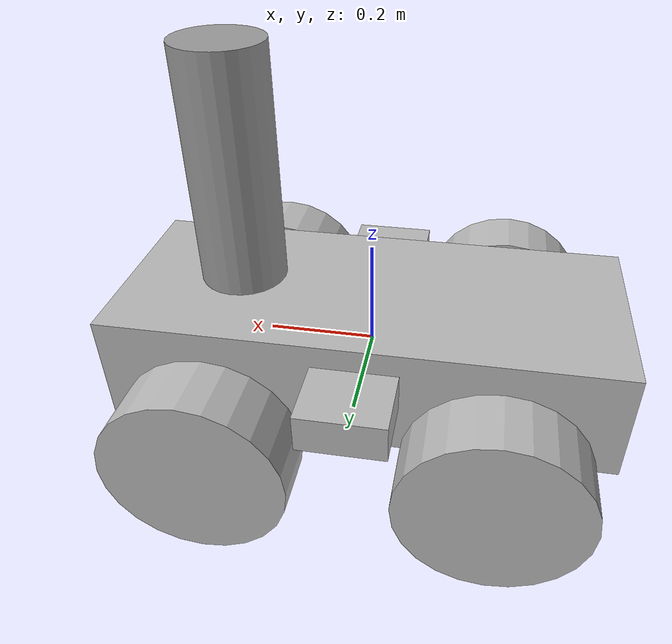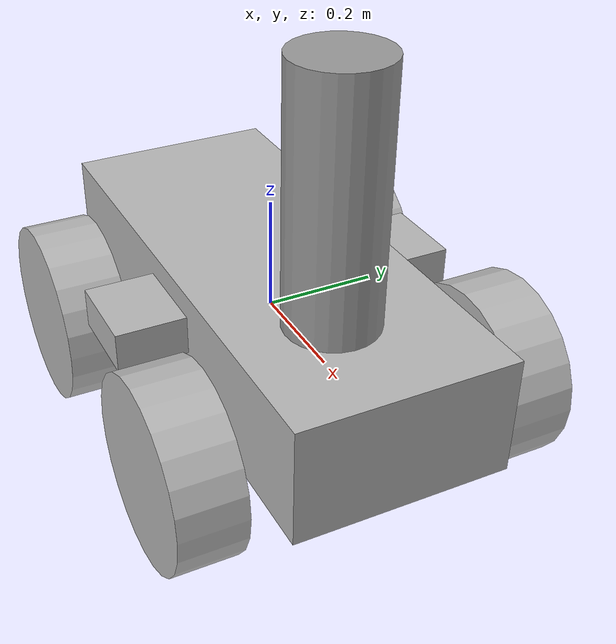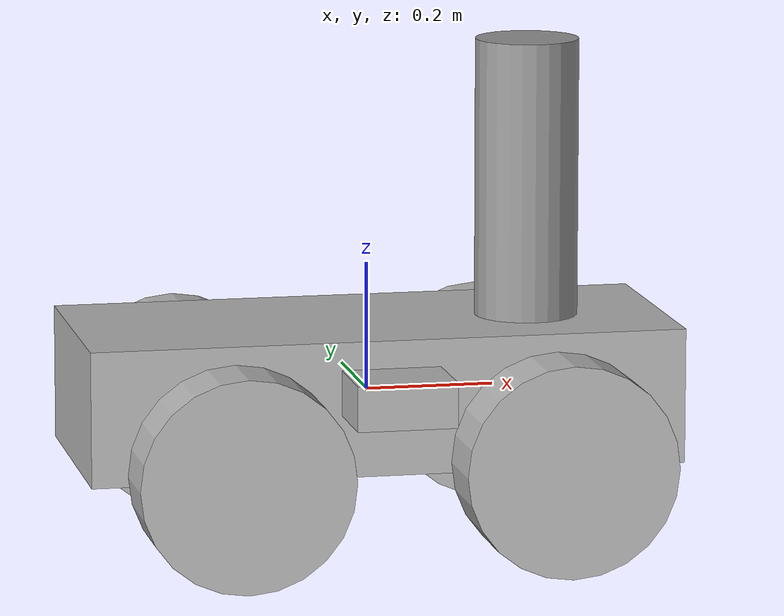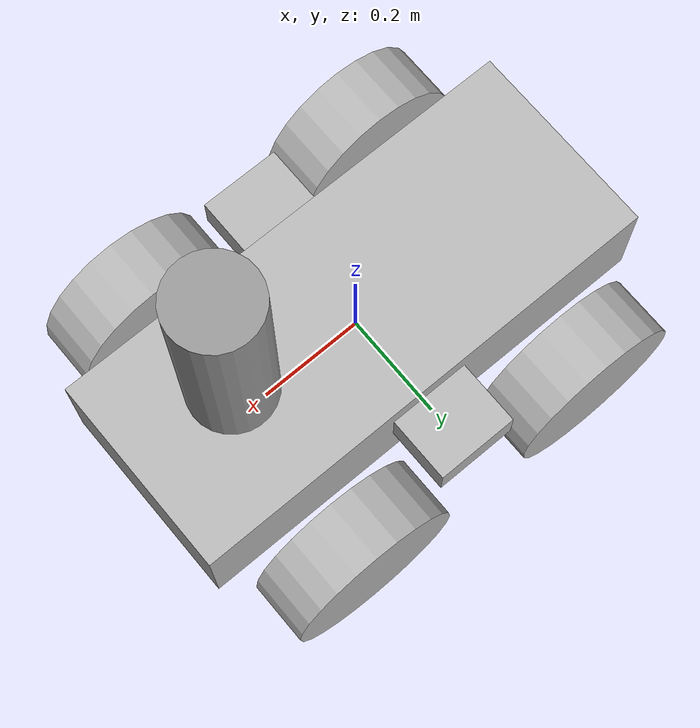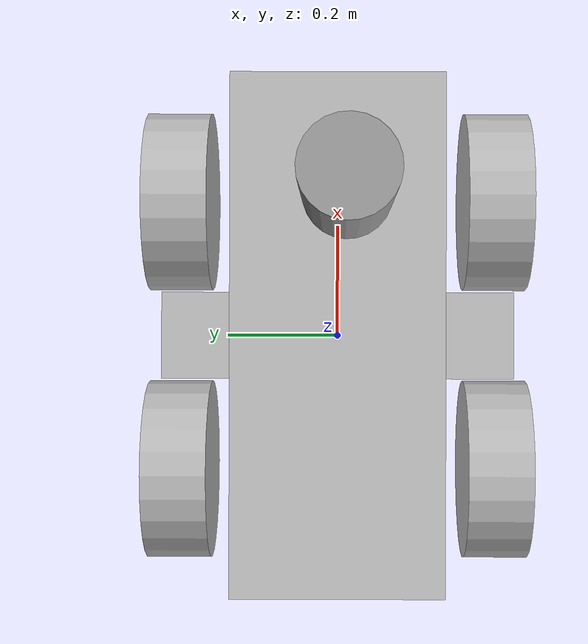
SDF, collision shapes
<?xml version='1.0'?>
<sdf version='1.7'>
  <model name='scout/scout_w_cyl'>
    <link name='base_link'>
      <inertial>
        <pose>0 0 0 0 -0 0</pose>
        <mass>50</mass>
        <inertia>
          <ixx>2.28864</ixx>
          <ixy>0</ixy>
          <ixz>0</ixz>
          <iyy>5.10398</iyy>
          <iyz>0</iyz>
          <izz>3.43147</izz>
        </inertia>
      </inertial>
      <self_collide>0</self_collide>
      <enable_wind>0</enable_wind>
      <kinematic>0</kinematic>
      <pose>0 0 0 0 -0 0</pose>
      <visual name='base_link_visual'>
        <pose>0 0 0 0 -0 0</pose>
        <geometry>
          <mesh>
            <scale>1 1 1</scale>
            <uri>/home/nate/scout_ws/src/ugv_sim/scout/scout_description/meshes/base_link.dae</uri>
          </mesh>
        </geometry>
        <material>
          <shader type='pixel'/>
          <emissive>0 0 0 1</emissive>
        </material>
        <transparency>0</transparency>
        <cast_shadows>1</cast_shadows>
      </visual>
      <collision name='base_link_collision_1'>
        <laser_retro>0</laser_retro>
        <max_contacts>10</max_contacts>
        <pose>0 0 0.035 0 -0 0</pose>
        <geometry>
          <box>
            <size>0.154167 0.627 0.07</size>
          </box>
        </geometry>
        <surface>
          <friction>
            <ode>
              <mu>1</mu>
              <mu2>1</mu2>
              <fdir1>0 0 0</fdir1>
              <slip1>0</slip1>
              <slip2>0</slip2>
            </ode>
            <torsional>
              <coefficient>1</coefficient>
              <patch_radius>0</patch_radius>
              <surface_radius>0</surface_radius>
              <use_patch_radius>1</use_patch_radius>
              <ode>
                <slip>0</slip>
              </ode>
            </torsional>
          </friction>
          <bounce>
            <restitution_coefficient>0</restitution_coefficient>
            <threshold>1e+06</threshold>
          </bounce>
          <contact>
            <collide_without_contact>0</collide_without_contact>
            <collide_without_contact_bitmask>1</collide_without_contact_bitmask>
            <collide_bitmask>1</collide_bitmask>
            <ode>
              <soft_cfm>0</soft_cfm>
              <soft_erp>0.2</soft_erp>
              <kp>1e+13</kp>
              <kd>1</kd>
              <max_vel>0.01</max_vel>
              <min_depth>0</min_depth>
            </ode>
            <bullet>
              <split_impulse>1</split_impulse>
              <split_impulse_penetration_threshold>-0.01</split_impulse_penetration_threshold>
              <soft_cfm>0</soft_cfm>
              <soft_erp>0.2</soft_erp>
              <kp>1e+13</kp>
              <kd>1</kd>
            </bullet>
          </contact>
        </surface>
      </collision>
      <collision name='base_link_collision'>
        <laser_retro>0</laser_retro>
        <max_contacts>10</max_contacts>
        <pose>0 0 0.008 0 -0 0</pose>
        <geometry>
          <box>
            <size>0.925 0.38 0.21</size>
          </box>
        </geometry>
        <surface>
          <friction>
            <ode>
              <mu>1</mu>
              <mu2>1</mu2>
              <fdir1>0 0 0</fdir1>
              <slip1>0</slip1>
              <slip2>0</slip2>
            </ode>
            <torsional>
              <coefficient>1</coefficient>
              <patch_radius>0</patch_radius>
              <surface_radius>0</surface_radius>
              <use_patch_radius>1</use_patch_radius>
              <ode>
                <slip>0</slip>
              </ode>
            </torsional>
          </friction>
          <bounce>
            <restitution_coefficient>0</restitution_coefficient>
            <threshold>1e+06</threshold>
          </bounce>
          <contact>
            <collide_without_contact>0</collide_without_contact>
            <collide_without_contact_bitmask>1</collide_without_contact_bitmask>
            <collide_bitmask>1</collide_bitmask>
            <ode>
              <soft_cfm>0</soft_cfm>
              <soft_erp>0.2</soft_erp>
              <kp>1e+13</kp>
              <kd>1</kd>
              <max_vel>0.01</max_vel>
              <min_depth>0</min_depth>
            </ode>
            <bullet>
              <split_impulse>1</split_impulse>
              <split_impulse_penetration_threshold>-0.01</split_impulse_penetration_threshold>
              <soft_cfm>0</soft_cfm>
              <soft_erp>0.2</soft_erp>
              <kp>1e+13</kp>
              <kd>1</kd>
            </bullet>
          </contact>
        </surface>
      </collision>
    </link>
    <link name='front_left_wheel_link'>
      <pose>0.249 0.29153 -0.0702 0 -0 0</pose>
      <inertial>
        <pose>0 0 0 0 -0 0</pose>
        <mass>8</mass>
        <inertia>
          <ixx>0.1171</ixx>
          <ixy>0</ixy>
          <ixz>0</ixz>
          <iyy>0.1361</iyy>
          <iyz>0</iyz>
          <izz>0.1171</izz>
        </inertia>
      </inertial>
      <self_collide>0</self_collide>
      <enable_wind>0</enable_wind>
      <kinematic>0</kinematic>
      <visual name='front_left_wheel_link_visual'>
        <pose>0 0 0 0 -0 0</pose>
        <geometry>
          <mesh>
            <scale>1 1 1</scale>
            <uri>/home/nate/scout_ws/src/ugv_sim/scout/scout_description/meshes/wheel_type1.dae</uri>
          </mesh>
        </geometry>
        <material>
          <shader type='pixel'/>
        </material>
        <transparency>0</transparency>
        <cast_shadows>1</cast_shadows>
      </visual>
      <collision name='front_left_wheel_link_collision'>
        <laser_retro>0</laser_retro>
        <max_contacts>10</max_contacts>
        <pose>0 0 0 1.57079 -0 0</pose>
        <geometry>
          <cylinder>
            <radius>0.16459</radius>
            <length>0.11653</length>
          </cylinder>
        </geometry>
        <surface>
          <friction>
            <ode>
              <mu>0.9</mu>
              <mu2>0.7</mu2>
              <fdir1>1 0 0</fdir1>
              <slip1>0</slip1>
              <slip2>0</slip2>
            </ode>
            <torsional>
              <coefficient>1</coefficient>
              <patch_radius>0</patch_radius>
              <surface_radius>0</surface_radius>
              <use_patch_radius>1</use_patch_radius>
              <ode>
                <slip>0</slip>
              </ode>
            </torsional>
          </friction>
          <bounce>
            <restitution_coefficient>0</restitution_coefficient>
            <threshold>1e+06</threshold>
          </bounce>
          <contact>
            <collide_without_contact>0</collide_without_contact>
            <collide_without_contact_bitmask>1</collide_without_contact_bitmask>
            <collide_bitmask>1</collide_bitmask>
            <ode>
              <soft_cfm>0</soft_cfm>
              <soft_erp>0.2</soft_erp>
              <kp>1e+09</kp>
              <kd>0</kd>
              <max_vel>0.01</max_vel>
              <min_depth>0.001</min_depth>
            </ode>
            <bullet>
              <split_impulse>1</split_impulse>
              <split_impulse_penetration_threshold>-0.01</split_impulse_penetration_threshold>
              <soft_cfm>0</soft_cfm>
              <soft_erp>0.2</soft_erp>
              <kp>1e+09</kp>
              <kd>0</kd>
            </bullet>
          </contact>
        </surface>
      </collision>
    </link>
    <link name='front_right_wheel_link'>
      <pose>0.249 -0.29153 -0.0702 3.14 -0 0</pose>
      <inertial>
        <pose>0 0 0 0 -0 0</pose>
        <mass>8</mass>
        <inertia>
          <ixx>0.1171</ixx>
          <ixy>0</ixy>
          <ixz>0</ixz>
          <iyy>0.1361</iyy>
          <iyz>0</iyz>
          <izz>0.1171</izz>
        </inertia>
      </inertial>
      <self_collide>0</self_collide>
      <enable_wind>0</enable_wind>
      <kinematic>0</kinematic>
      <visual name='front_right_wheel_link_visual'>
        <pose>0 0 0 0 -0 0</pose>
        <geometry>
          <mesh>
            <scale>1 1 1</scale>
            <uri>/home/nate/scout_ws/src/ugv_sim/scout/scout_description/meshes/wheel_type1.dae</uri>
          </mesh>
        </geometry>
        <material>
          <shader type='pixel'/>
        </material>
        <transparency>0</transparency>
        <cast_shadows>1</cast_shadows>
      </visual>
      <collision name='front_right_wheel_link_collision'>
        <laser_retro>0</laser_retro>
        <max_contacts>10</max_contacts>
        <pose>0 0 0 1.57079 -0 0</pose>
        <geometry>
          <cylinder>
            <radius>0.16459</radius>
            <length>0.11653</length>
          </cylinder>
        </geometry>
        <surface>
          <friction>
            <ode>
              <mu>0.9</mu>
              <mu2>0.7</mu2>
              <fdir1>1 0 0</fdir1>
              <slip1>0</slip1>
              <slip2>0</slip2>
            </ode>
            <torsional>
              <coefficient>1</coefficient>
              <patch_radius>0</patch_radius>
              <surface_radius>0</surface_radius>
              <use_patch_radius>1</use_patch_radius>
              <ode>
                <slip>0</slip>
              </ode>
            </torsional>
          </friction>
          <bounce>
            <restitution_coefficient>0</restitution_coefficient>
            <threshold>1e+06</threshold>
          </bounce>
          <contact>
            <collide_without_contact>0</collide_without_contact>
            <collide_without_contact_bitmask>1</collide_without_contact_bitmask>
            <collide_bitmask>1</collide_bitmask>
            <ode>
              <soft_cfm>0</soft_cfm>
              <soft_erp>0.2</soft_erp>
              <kp>1e+09</kp>
              <kd>0</kd>
              <max_vel>0.01</max_vel>
              <min_depth>0.001</min_depth>
            </ode>
            <bullet>
              <split_impulse>1</split_impulse>
              <split_impulse_penetration_threshold>-0.01</split_impulse_penetration_threshold>
              <soft_cfm>0</soft_cfm>
              <soft_erp>0.2</soft_erp>
              <kp>1e+09</kp>
              <kd>0</kd>
            </bullet>
          </contact>
        </surface>
      </collision>
    </link>
    <link name='link_0'>
      <inertial>
        <mass>0.0120746</mass>
        <inertia>
          <ixx>0.000238806</ixx>
          <ixy>0</ixy>
          <ixz>0</ixz>
          <iyy>0.000238806</iyy>
          <iyz>0</iyz>
          <izz>3.90394e-05</izz>
        </inertia>
        <pose>0 0 0 0 -0 0</pose>
      </inertial>
      <pose>0.249654 -0.016848 0.31321 -0.000305 6.4e-05 -0.045899</pose>
      <visual name='visual'>
        <pose>0 0 0 0 -0 0</pose>
        <geometry>
          <cylinder>
            <radius>0.0804137</radius>
            <length>0.466831</length>
          </cylinder>
        </geometry>
        <material>
          <lighting>1</lighting>
          <script>
            <uri>file://media/materials/scripts/gazebo.material</uri>
            <name>Gazebo/Grey</name>
          </script>
          <shader type='pixel'/>
          <emissive>0 0 0 1</emissive>
        </material>
        <transparency>0</transparency>
        <cast_shadows>1</cast_shadows>
      </visual>
      <collision name='collision'>
        <laser_retro>0</laser_retro>
        <max_contacts>10</max_contacts>
        <pose>0 0 0 0 -0 0</pose>
        <geometry>
          <cylinder>
            <radius>0.080414</radius>
            <length>0.466831</length>
          </cylinder>
        </geometry>
        <surface>
          <friction>
            <ode>
              <mu>1</mu>
              <mu2>1</mu2>
              <fdir1>0 0 0</fdir1>
              <slip1>0</slip1>
              <slip2>0</slip2>
            </ode>
            <torsional>
              <coefficient>1</coefficient>
              <patch_radius>0</patch_radius>
              <surface_radius>0</surface_radius>
              <use_patch_radius>1</use_patch_radius>
              <ode>
                <slip>0</slip>
              </ode>
            </torsional>
          </friction>
          <bounce>
            <restitution_coefficient>0</restitution_coefficient>
            <threshold>1e+06</threshold>
          </bounce>
          <contact>
            <collide_without_contact>0</collide_without_contact>
            <collide_without_contact_bitmask>1</collide_without_contact_bitmask>
            <collide_bitmask>1</collide_bitmask>
            <ode>
              <soft_cfm>0</soft_cfm>
              <soft_erp>0.2</soft_erp>
              <kp>1e+13</kp>
              <kd>1</kd>
              <max_vel>0.01</max_vel>
              <min_depth>0</min_depth>
            </ode>
            <bullet>
              <split_impulse>1</split_impulse>
              <split_impulse_penetration_threshold>-0.01</split_impulse_penetration_threshold>
              <soft_cfm>0</soft_cfm>
              <soft_erp>0.2</soft_erp>
              <kp>1e+13</kp>
              <kd>1</kd>
            </bullet>
          </contact>
        </surface>
      </collision>
    </link>
    <link name='rear_left_wheel_link'>
      <pose>-0.249 0.29153 -0.0702 0 -0 0</pose>
      <inertial>
        <pose>0 0 0 0 -0 0</pose>
        <mass>8</mass>
        <inertia>
          <ixx>0.1171</ixx>
          <ixy>0</ixy>
          <ixz>0</ixz>
          <iyy>0.1361</iyy>
          <iyz>0</iyz>
          <izz>0.1171</izz>
        </inertia>
      </inertial>
      <self_collide>0</self_collide>
      <enable_wind>0</enable_wind>
      <kinematic>0</kinematic>
      <visual name='rear_left_wheel_link_visual'>
        <pose>0 0 0 0 -0 0</pose>
        <geometry>
          <mesh>
            <scale>1 1 1</scale>
            <uri>/home/nate/scout_ws/src/ugv_sim/scout/scout_description/meshes/wheel_type1.dae</uri>
          </mesh>
        </geometry>
        <material>
          <shader type='pixel'/>
        </material>
        <transparency>0</transparency>
        <cast_shadows>1</cast_shadows>
      </visual>
      <collision name='rear_left_wheel_link_collision'>
        <laser_retro>0</laser_retro>
        <max_contacts>10</max_contacts>
        <pose>0 0 0 1.57079 -0 0</pose>
        <geometry>
          <cylinder>
            <radius>0.16459</radius>
            <length>0.11653</length>
          </cylinder>
        </geometry>
        <surface>
          <friction>
            <ode>
              <mu>0.9</mu>
              <mu2>0.7</mu2>
              <fdir1>1 0 0</fdir1>
              <slip1>0</slip1>
              <slip2>0</slip2>
            </ode>
            <torsional>
              <coefficient>1</coefficient>
              <patch_radius>0</patch_radius>
              <surface_radius>0</surface_radius>
              <use_patch_radius>1</use_patch_radius>
              <ode>
                <slip>0</slip>
              </ode>
            </torsional>
          </friction>
          <bounce>
            <restitution_coefficient>0</restitution_coefficient>
            <threshold>1e+06</threshold>
          </bounce>
          <contact>
            <collide_without_contact>0</collide_without_contact>
            <collide_without_contact_bitmask>1</collide_without_contact_bitmask>
            <collide_bitmask>1</collide_bitmask>
            <ode>
              <soft_cfm>0</soft_cfm>
              <soft_erp>0.2</soft_erp>
              <kp>1e+09</kp>
              <kd>0</kd>
              <max_vel>0.01</max_vel>
              <min_depth>0.001</min_depth>
            </ode>
            <bullet>
              <split_impulse>1</split_impulse>
              <split_impulse_penetration_threshold>-0.01</split_impulse_penetration_threshold>
              <soft_cfm>0</soft_cfm>
              <soft_erp>0.2</soft_erp>
              <kp>1e+09</kp>
              <kd>0</kd>
            </bullet>
          </contact>
        </surface>
      </collision>
    </link>
    <link name='rear_right_wheel_link'>
      <pose>-0.249 -0.29153 -0.0702 3.14 -0 0</pose>
      <inertial>
        <pose>0 0 0 0 -0 0</pose>
        <mass>8</mass>
        <inertia>
          <ixx>0.1171</ixx>
          <ixy>0</ixy>
          <ixz>0</ixz>
          <iyy>0.1361</iyy>
          <iyz>0</iyz>
          <izz>0.1171</izz>
        </inertia>
      </inertial>
      <self_collide>0</self_collide>
      <enable_wind>0</enable_wind>
      <kinematic>0</kinematic>
      <visual name='rear_right_wheel_link_visual'>
        <pose>0 0 0 0 -0 0</pose>
        <geometry>
          <mesh>
            <scale>1 1 1</scale>
            <uri>/home/nate/scout_ws/src/ugv_sim/scout/scout_description/meshes/wheel_type1.dae</uri>
          </mesh>
        </geometry>
        <material>
          <shader type='pixel'/>
          <emissive>0 0 0 1</emissive>
        </material>
        <transparency>0</transparency>
        <cast_shadows>1</cast_shadows>
      </visual>
      <collision name='rear_right_wheel_link_collision'>
        <laser_retro>0</laser_retro>
        <max_contacts>10</max_contacts>
        <pose>0 0 0 1.57079 -0 0</pose>
        <geometry>
          <cylinder>
            <radius>0.16459</radius>
            <length>0.11653</length>
          </cylinder>
        </geometry>
        <surface>
          <friction>
            <ode>
              <mu>0.9</mu>
              <mu2>0.7</mu2>
              <fdir1>1 0 0</fdir1>
              <slip1>0</slip1>
              <slip2>0</slip2>
            </ode>
            <torsional>
              <coefficient>1</coefficient>
              <patch_radius>0</patch_radius>
              <surface_radius>0</surface_radius>
              <use_patch_radius>1</use_patch_radius>
              <ode>
                <slip>0</slip>
              </ode>
            </torsional>
          </friction>
          <bounce>
            <restitution_coefficient>0</restitution_coefficient>
            <threshold>1e+06</threshold>
          </bounce>
          <contact>
            <collide_without_contact>0</collide_without_contact>
            <collide_without_contact_bitmask>1</collide_without_contact_bitmask>
            <collide_bitmask>1</collide_bitmask>
            <ode>
              <soft_cfm>0</soft_cfm>
              <soft_erp>0.2</soft_erp>
              <kp>1e+09</kp>
              <kd>0</kd>
              <max_vel>0.01</max_vel>
              <min_depth>0.001</min_depth>
            </ode>
            <bullet>
              <split_impulse>1</split_impulse>
              <split_impulse_penetration_threshold>-0.01</split_impulse_penetration_threshold>
              <soft_cfm>0</soft_cfm>
              <soft_erp>0.2</soft_erp>
              <kp>1e+09</kp>
              <kd>0</kd>
            </bullet>
          </contact>
        </surface>
      </collision>
    </link>
    <joint name='base_link_JOINT_0' type='fixed'>
      <parent>base_link</parent>
      <child>link_0</child>
      <pose>0 0 0 0 -0 0</pose>
      <physics>
        <ode>
          <limit>
            <cfm>0</cfm>
            <erp>0.2</erp>
          </limit>
          <suspension>
            <cfm>0</cfm>
            <erp>0.2</erp>
          </suspension>
        </ode>
      </physics>
    </joint>
    <joint name='front_left_wheel' type='revolute'>
      <parent>base_link</parent>
      <child>front_left_wheel_link</child>
      <pose>0 0 0 0 -0 0</pose>
      <axis>
        <xyz>0 -1 0</xyz>
        <limit>
          <lower>-1e+16</lower>
          <upper>1e+16</upper>
          <effort>-1</effort>
          <velocity>-1</velocity>
        </limit>
        <dynamics>
          <spring_reference>0</spring_reference>
          <spring_stiffness>0</spring_stiffness>
          <damping>0</damping>
          <friction>20</friction>
        </dynamics>
      </axis>
      <physics>
        <ode>
          <limit>
            <cfm>0</cfm>
            <erp>0.2</erp>
          </limit>
          <suspension>
            <cfm>0</cfm>
            <erp>0.2</erp>
          </suspension>
        </ode>
      </physics>
    </joint>
    <joint name='front_right_wheel' type='revolute'>
      <parent>base_link</parent>
      <child>front_right_wheel_link</child>
      <pose>0 -0 0 0 -0 0</pose>
      <axis>
        <xyz>0 -1 0</xyz>
        <limit>
          <lower>-1e+16</lower>
          <upper>1e+16</upper>
          <effort>-1</effort>
          <velocity>-1</velocity>
        </limit>
        <dynamics>
          <spring_reference>0</spring_reference>
          <spring_stiffness>0</spring_stiffness>
          <damping>0</damping>
          <friction>20</friction>
        </dynamics>
      </axis>
      <physics>
        <ode>
          <limit>
            <cfm>0</cfm>
            <erp>0.2</erp>
          </limit>
          <suspension>
            <cfm>0</cfm>
            <erp>0.2</erp>
          </suspension>
        </ode>
      </physics>
    </joint>
    <joint name='rear_left_wheel' type='revolute'>
      <parent>base_link</parent>
      <child>rear_left_wheel_link</child>
      <pose>0 0 0 0 -0 0</pose>
      <axis>
        <xyz>0 -1 0</xyz>
        <limit>
          <lower>-1e+16</lower>
          <upper>1e+16</upper>
          <effort>-1</effort>
          <velocity>-1</velocity>
        </limit>
        <dynamics>
          <spring_reference>0</spring_reference>
          <spring_stiffness>0</spring_stiffness>
          <damping>0</damping>
          <friction>20</friction>
        </dynamics>
      </axis>
      <physics>
        <ode>
          <limit>
            <cfm>0</cfm>
            <erp>0.2</erp>
          </limit>
          <suspension>
            <cfm>0</cfm>
            <erp>0.2</erp>
          </suspension>
        </ode>
      </physics>
    </joint>
    <joint name='rear_right_wheel' type='revolute'>
      <parent>base_link</parent>
      <child>rear_right_wheel_link</child>
      <pose>0 -0 0 0 -0 0</pose>
      <axis>
        <xyz>0 -1 0</xyz>
        <limit>
          <lower>-1e+16</lower>
          <upper>1e+16</upper>
          <effort>-1</effort>
          <velocity>-1</velocity>
        </limit>
        <dynamics>
          <spring_reference>0</spring_reference>
          <spring_stiffness>0</spring_stiffness>
          <damping>0</damping>
          <friction>20</friction>
        </dynamics>
      </axis>
      <physics>
        <ode>
          <limit>
            <cfm>0</cfm>
            <erp>0.2</erp>
          </limit>
          <suspension>
            <cfm>0</cfm>
            <erp>0.2</erp>
          </suspension>
        </ode>
      </physics>
    </joint>
    <static>0</static>
    <allow_auto_disable>1</allow_auto_disable>
    <plugin name='gazebo_ros_control' filename='libgazebo_ros_control.so'>
      <robotNamespace>/</robotNamespace>
    </plugin>
  </model>
</sdf>
